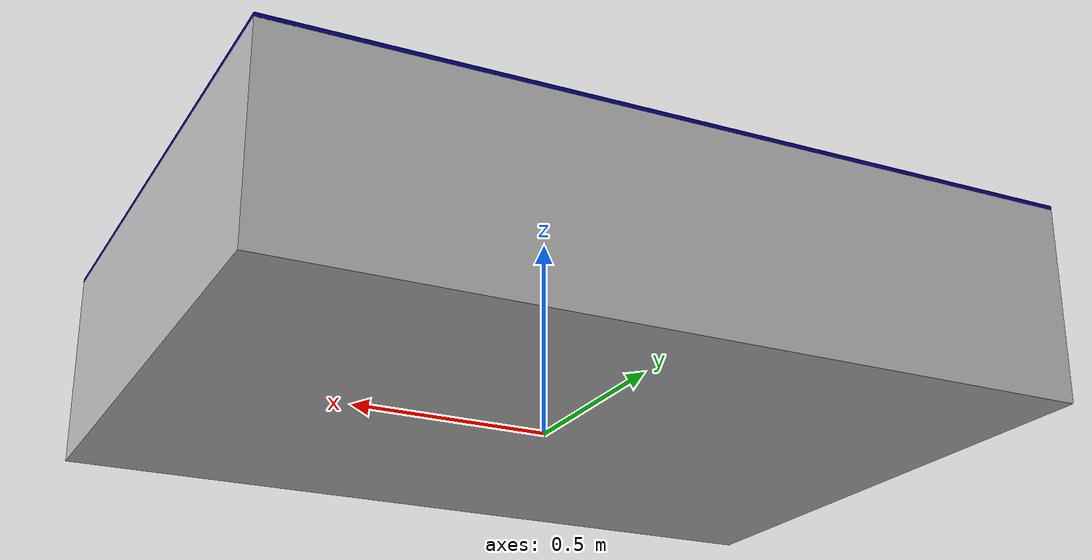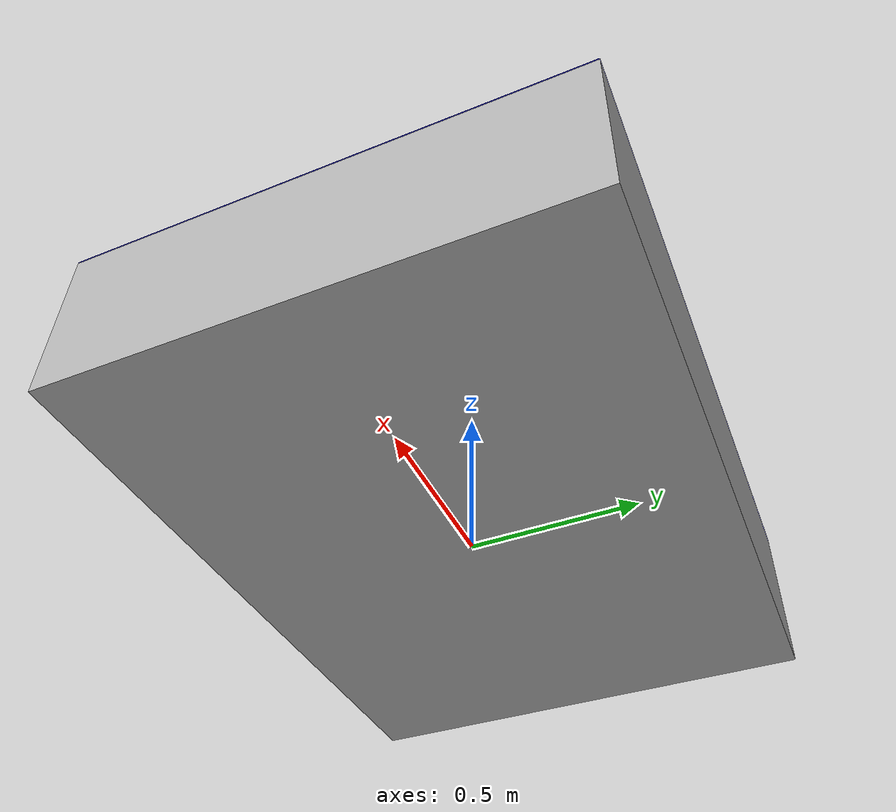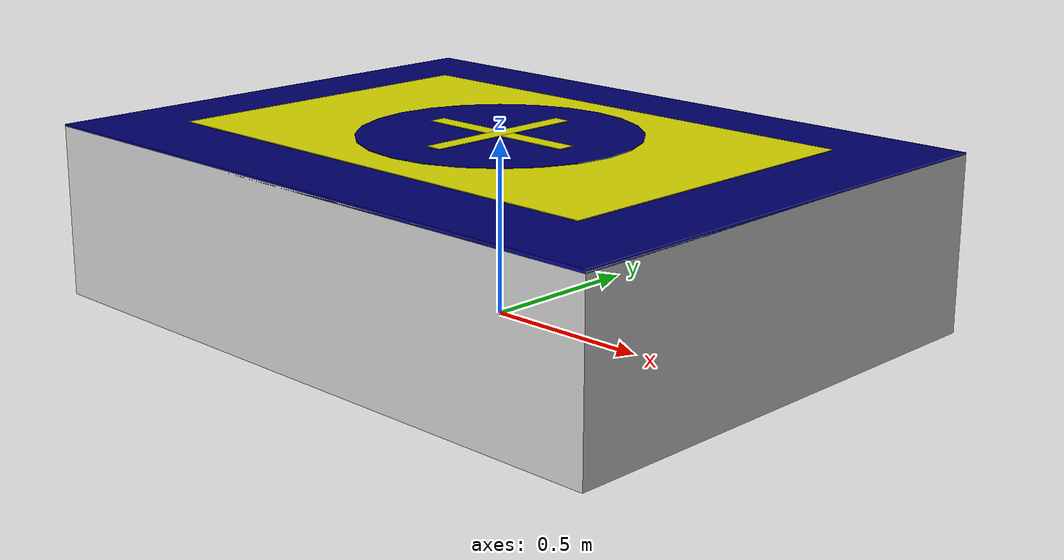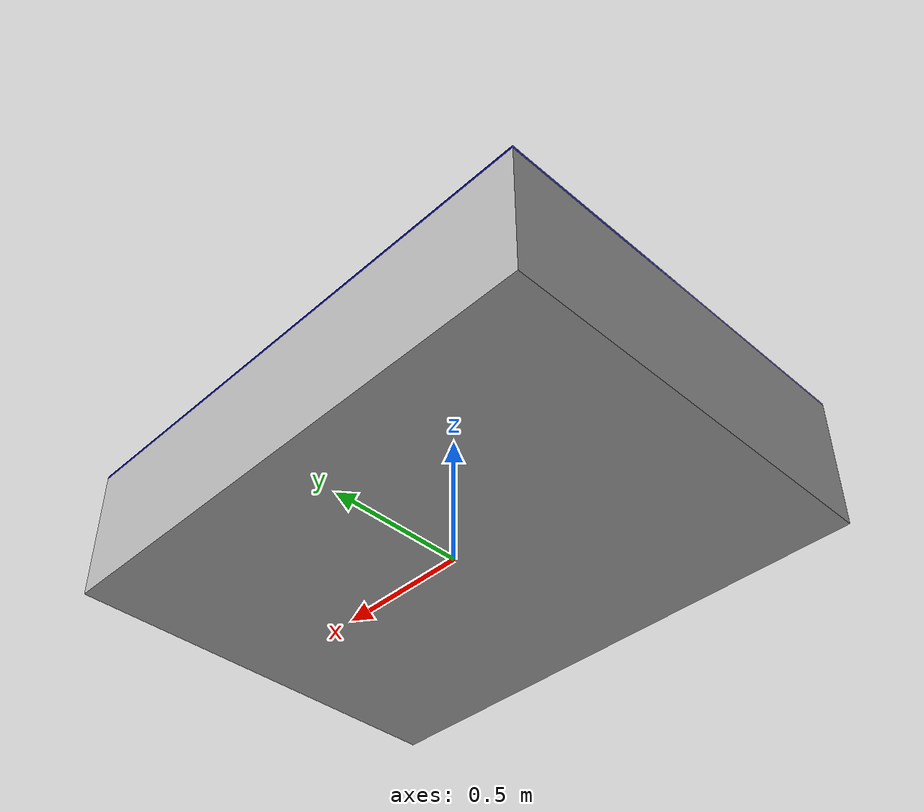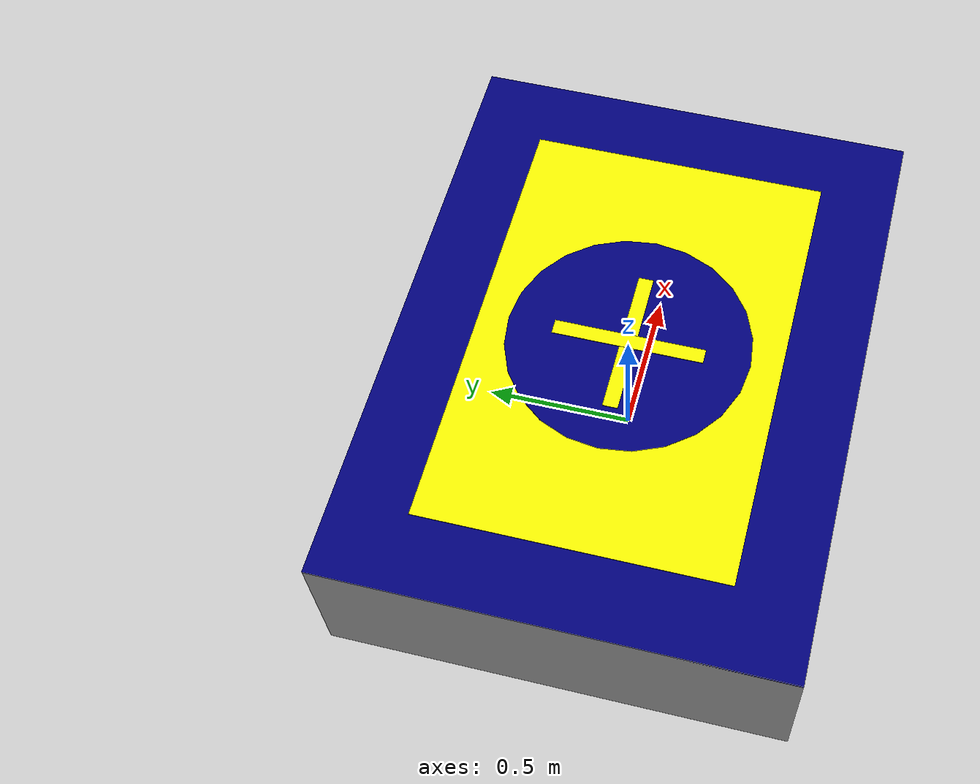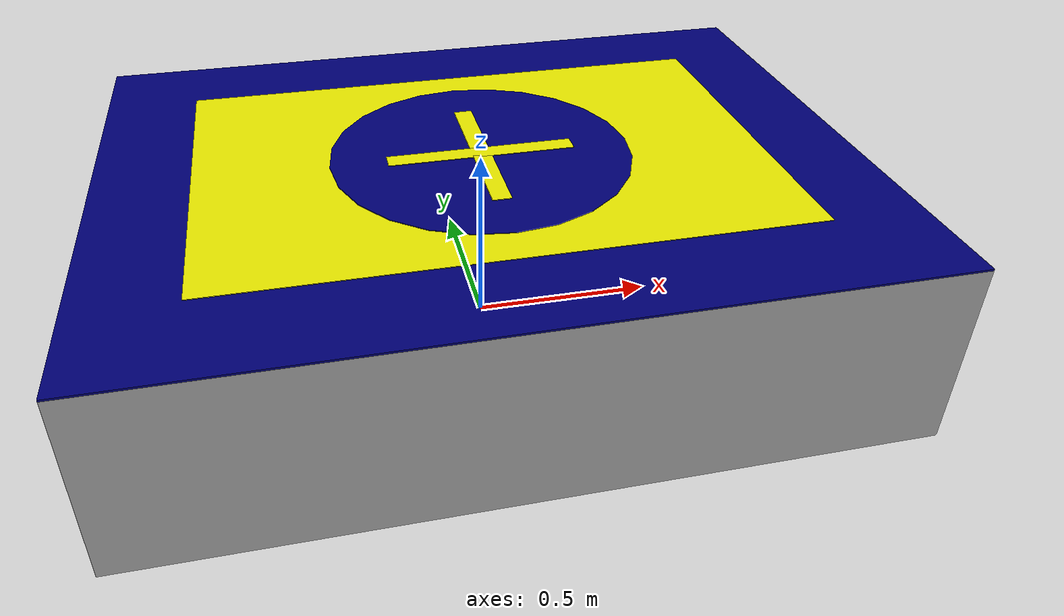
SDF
<?xml version="1.0" ?><!-- Plano de 1x1m (base) -->
<sdf version="1.6">
  <model name="base_takeoff">
    <static>true</static>
    <link name="link_base">
      <collision name="collision">
        <pose>0 0 0.25 0 0 0</pose>
        <geometry>
          <box>
            <size>2 1.5 0.5</size>
          </box>
        </geometry>
      </collision>

      <!-- Base -->
      <visual name="base">
        <pose>0 0 0.25 0 0 0</pose>
        <geometry>
          <box><size>2 1.5 0.5</size></box>
        </geometry>
        <material>
          <ambient>0.7 0.7 0.7 1</ambient>  <!-- Cinza -->
          <diffuse>0.7 0.7 0.7 1</diffuse>
        </material>
      </visual>

      <!-- Plano de 2x1.5m (contorno) -->
      <visual name="retangulo_azul">
        <pose>0 0 0.5 0 0 0</pose>
        <geometry>
          <box><size>2 1.5 0.01</size></box>
        </geometry>
        <material>
          <ambient>0 0 0.5 1</ambient>  <!-- Azul escuro -->
          <diffuse>0 0 0.5 1</diffuse>
        </material>
      </visual>

      <!-- Plano de 1.5x1m (retangulo amarelo) -->
      <visual name="retangulo_amarelo">
        <pose>0 0 0.512 0 0 0</pose>
        <geometry>
          <box><size>1.5 1 0.002</size></box>
        </geometry>
        <material>
          <ambient>1 1 0 1</ambient>  <!-- Amarelo -->
          <diffuse>1 1 0 1</diffuse>
        </material>
      </visual>

      <!-- Círculo azul (0.8m de diâmetro) -->
      <visual name="circulo_in">
        <pose>0 0 0.516 0 0 0</pose>
        <geometry>
          <cylinder>
            <radius>0.4</radius>
            <length>0.002</length>
          </cylinder>
        </geometry>
        <material>
          <ambient>0 0 0.5 1</ambient>  <!-- Azul escuro -->
          <diffuse>0 0 0.5 1</diffuse>
        </material>
      </visual>

      <!-- Linha horizontal da cruz -->
      <visual name="linha_h">
        <pose>0 0 0.518 0 0 0</pose>
        <geometry>
          <box><size>0.5 0.05 0.002</size></box>
        </geometry>
        <material>
          <ambient>1 1 0 1</ambient>
          <diffuse>1 1 0 1</diffuse>
        </material>
      </visual>

      <!-- Linha vertical da cruz -->
      <visual name="linha_v">
        <pose>0 0 0.518 0 0 0</pose>
        <geometry>
          <box><size>0.05 0.5 0.002</size></box>
        </geometry>
        <material>
          <ambient>1 1 0 1</ambient>
          <diffuse>1 1 0 1</diffuse>
        </material>
      </visual>

    </link>
  </model>
</sdf>
